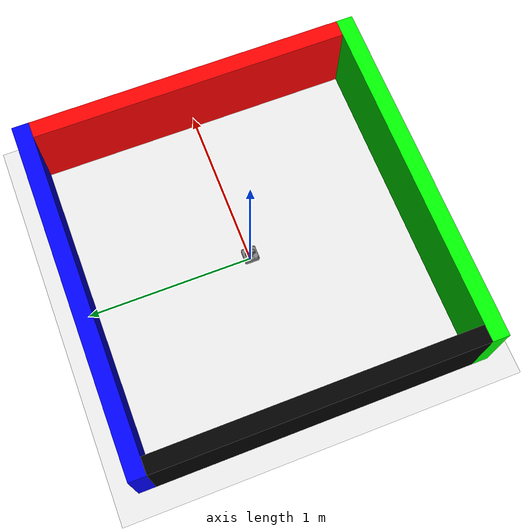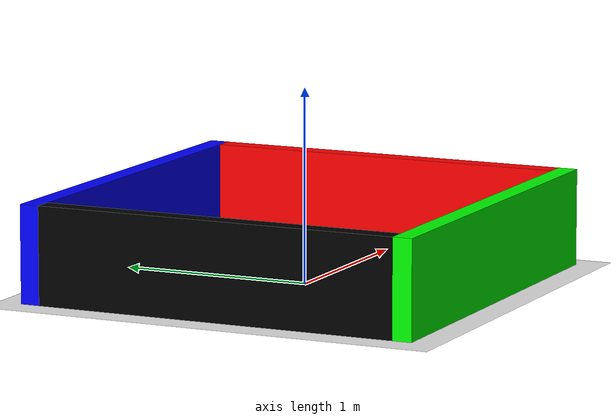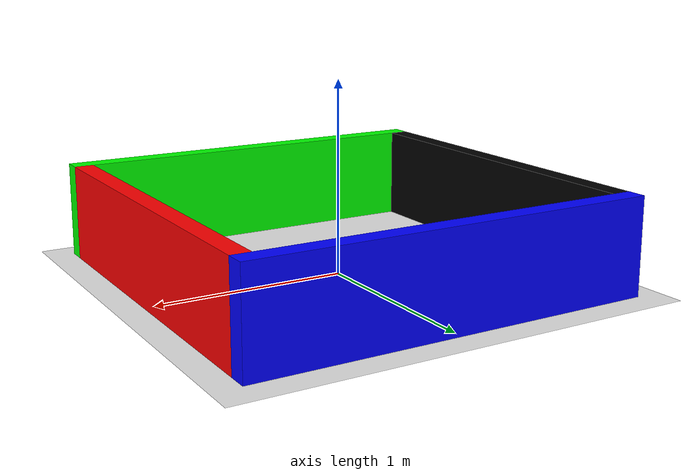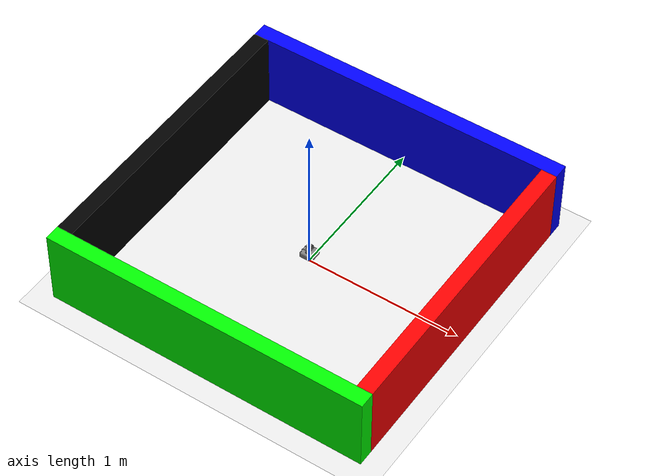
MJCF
<mujoco>
  <visual>
    <global offwidth="640" offheight="640"/>
  </visual>
  <option gravity="0 0 -9.81"/>
  <asset>
		<mesh name="body" file="mesh/mujoco_simplified_body.stl"/>
    <mesh name="wheel" file="mesh/actuator_rotor_simplified.stl"/>
	</asset>
  <worldbody>
    <light diffuse=".9 .9 .9" pos="0 0 5" dir="0 0 -1"/>
    <geom name="ground" type="plane" size="5 5 0.1" rgba=".9 .9 .9 1"/>
    <body name ="body" pos="0 0 .0645" euler="0 0 0">
      <inertial pos="0 0 0" mass="0.400" diaginertia="220e-6 190e-6 300e-6"/>
      <site name = "imu_1" pos = "-0.0234 -0.0204 0.01939" euler="180 0 90" type="box" size="0.0045 0.003 0.00095"/>
      <site name = "imu_2" pos = "0.0234 0.0204 0.01939" euler="180 0 90" type="box" size="0.0045 0.003 0.00095"/>
      <site name = "imu_3" pos = "-0.016427 0.020172 -0.01889" euler="0 0 90" type="box" size="0.0045 0.003 0.00095"/>
      <site name = "imu_4" pos = "0.016368 -0.020481 -0.018916" euler="0 0 90" type="box" size="0.0045 0.003 0.00095"/>
      <joint type="free"/>
      <geom name="body_geom" type="mesh" mesh="body"/>
      <body name ="wheel1" pos="0 0 -0.0325" euler="0 0 -90">
        <inertial pos="0 0 0" mass="0.129" diaginertia="100e-6 53e-6 53e-6"/>
        <joint name="w1" type="hinge" pos="0 0 0" axis="-1 0 0" damping="0.001"/>
        <geom name="wheel_1_geom" type="mesh" mesh="wheel"/>
      </body>
      <body name ="wheel2" pos="0 0 0.0325" euler="0 0 0">
        <inertial pos="0 0 0" mass="0.129" diaginertia="100e-6 53e-6 53e-6"/>
        <joint name="w2" type="hinge" pos="0 0 0" axis="1 0 0" damping="0.0001"/>
        <geom name="wheel_2_geom" type="mesh" mesh="wheel"/>
      </body>
    </body>
    <!-- Overhead Camera-->
    <camera name="overhead" pos="0 0 3" quat="1 0 0 0" mode="fixed"/>
    <camera name="balancing_view" pos="0.000 -0.545 0.545" xyaxes="1.000 -0.000 0.000 0.000 0.707 0.707" mode="fixed"/>

    <!-- Wall 1: North -->
    <geom name="wall_north" type="box" pos="0 1 0.25" size="1.05 0.05 0.25" rgba="0 0 1 1" friction="1 0.1 0.1"/>
    <!-- Wall 2: South -->
    <geom name="wall_south" type="box" pos="0 -1 0.25" size="1.05 0.05 0.25" rgba="0 1 0 1" friction="1 0.1 0.1"/>
    <!-- Wall 3: East -->
    <geom name="wall_east" type="box" pos="1 0 0.25" size="0.05 0.95 0.25" rgba="1 0 0 1" friction="1 0.1 0.1"/>
    <!-- Wall 4: West -->
    <geom name="wall_west" type="box" pos="-1 0 0.25" size="0.05 0.95 0.25" rgba="0 0 0 1" friction="1 0.1 0.1"/>
  </worldbody>
  <actuator>
    <motor name="motor_1" joint="w1" gear="1" ctrlrange="-0.5 0.5"/>
    <motor name="motor_2" joint="w2" gear="1" ctrlrange="-0.5 0.5"/>
  </actuator>
  <sensor>
    <accelerometer name="acc_1" site="imu_1"/>
    <accelerometer name="acc_2" site="imu_2"/>
    <accelerometer name="acc_3" site="imu_3"/>
    <accelerometer name="acc_4" site="imu_4"/>

    <gyro name="gyr_1" site="imu_1"/>
    <gyro name="gyr_2" site="imu_2"/>
    <gyro name="gyr_3" site="imu_3"/>
    <gyro name="gyr_4" site="imu_4"/>

    <actuatorpos name="motor_1_pos" actuator="motor_1"/>
    <actuatorpos name="motor_2_pos" actuator="motor_2"/>
  </sensor>
  <contact>
    <exclude body1="wheel1" body2="wheel2"/>
    <exclude body1="wheel1" body2="body"/>
    <exclude body1="wheel2" body2="body"/>

    <pair geom1="wheel_1_geom" geom2="ground" condim="6" friction="1 1 0.005 0.0001 0.0001" solimp="0.9 0.95 0.001 0.5 2" solref="0.02 1"/>
  </contact>
</mujoco>
